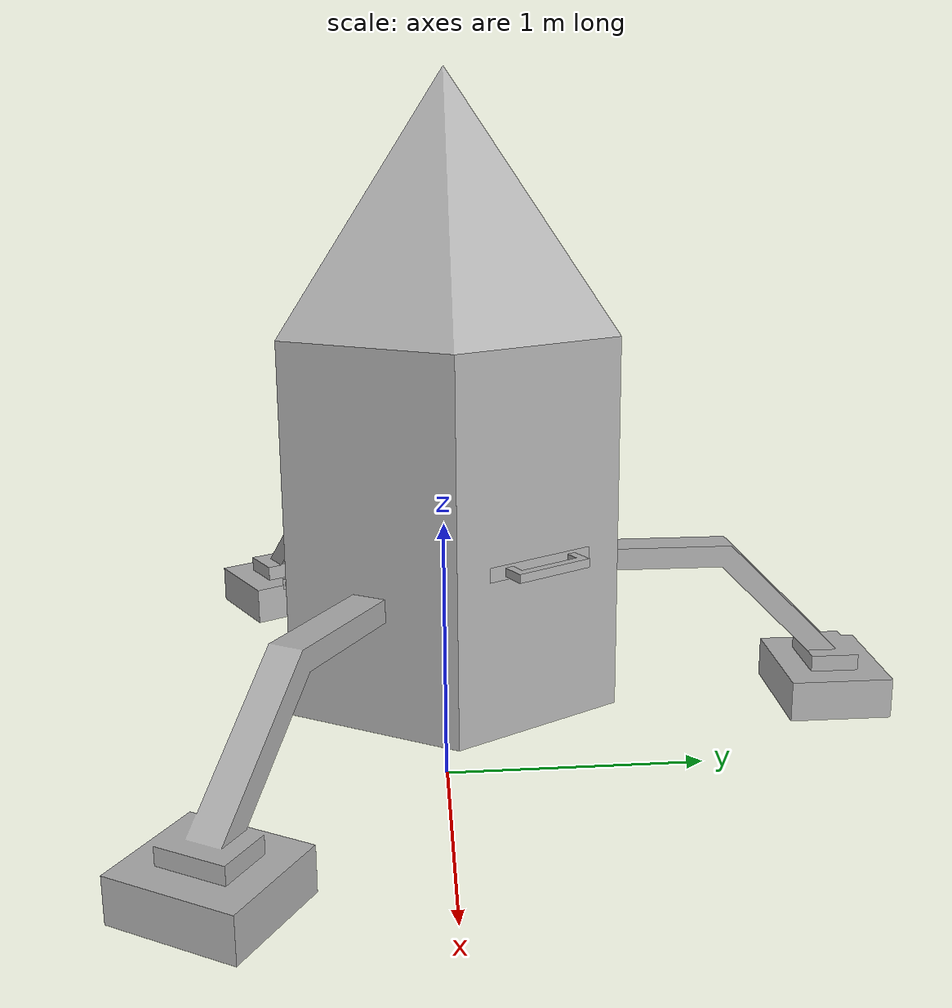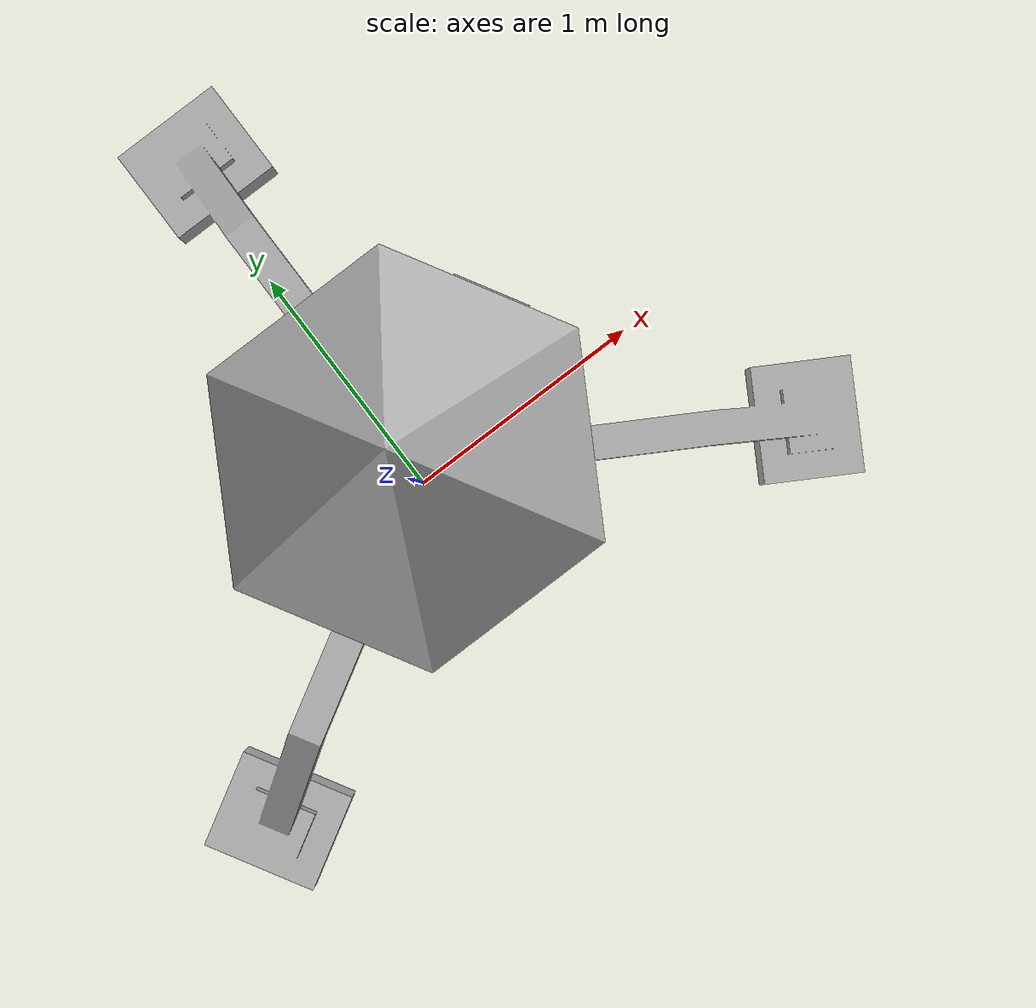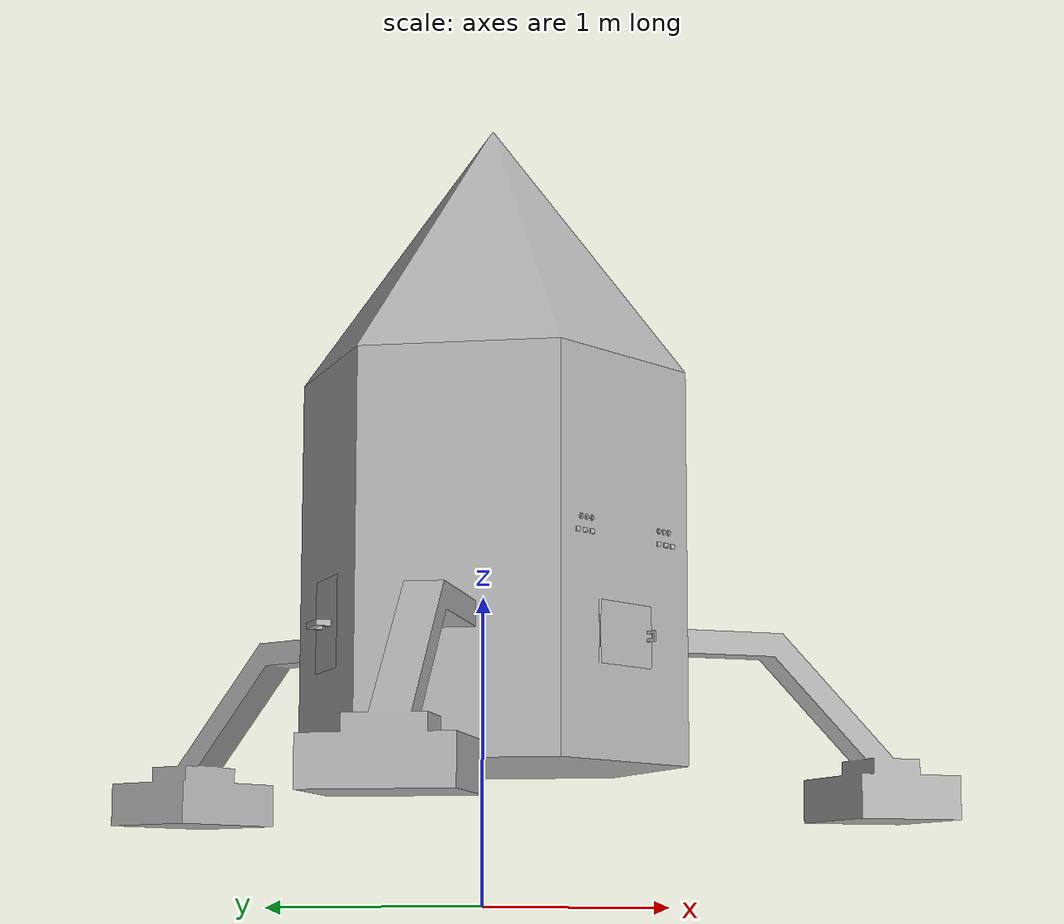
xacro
<?xml version="1.0" ?>
<robot name="panel_base"
  xmlns:xacro="http://www.ros.org/wiki/xacro">

  <xacro:include filename="$(find panel_base_description)/urdf/materials.xacro" />
  <xacro:include filename="$(find panel_base_description)/urdf/panel_base.trans" />
  <xacro:include filename="$(find panel_base_description)/urdf/panel_base.gazebo" />
  <link name="world">
  </link>
  <joint name="world_joint" type="fixed">
    <origin xyz="0 0 0.5" rpy="0 0 0" />
    <parent link="world" />
    <child link="base_link" />
  </joint>
  <link name="base_link">
    <inertial>
      <origin rpy="0 0 0" xyz="0.06511362426152816 0.015003868286298343 0.6005550723346115"/>
      <mass value="10863.544288992367"/>
      <inertia ixx="2524.540106" ixy="-10.92074" ixz="13.738953" iyy="2514.460837" iyz="-4.317618" izz="1913.520199"/>
    </inertial>
    <visual>
      <origin rpy="0 0 0" xyz="0 0 0"/>
      <geometry>
        <mesh filename="package://panel_base_description/meshes/base_link.stl" scale="0.001 0.001 0.001"/>
      </geometry>
      <material name="silver"/>
    </visual>
    <collision>
      <origin rpy="0 0 0" xyz="0 0 0"/>
      <geometry>
        <mesh filename="package://panel_base_description/meshes/base_link.stl" scale="0.001 0.001 0.001"/>
      </geometry>
    </collision>
  </link>

  <link name="LID_v2_1">
    <inertial>
      <origin rpy="0 0 0" xyz="-0.17558902614773753 0.10137662156005395 -0.009908204524496311"/>
      <mass value="4.56314999999999"/>
      <inertia ixx="0.998685" ixy="0.239189" ixz="0.001124" iyy="1.274877" iyz="-0.000649" izz="1.486785"/>
    </inertial>
    <visual>
      <origin rpy="0 0 0" xyz="0.08109 -0.099434 -0.394773"/>
      <geometry>
        <mesh filename="package://panel_base_description/meshes/LID_v2_1.stl" scale="0.001 0.001 0.001"/>
      </geometry>
      <material name="silver"/>
    </visual>
    <collision>
      <origin rpy="0 0 0" xyz="0.08109 -0.099434 -0.394773"/>
      <geometry>
        <mesh filename="package://panel_base_description/meshes/LID_v2_1.stl" scale="0.001 0.001 0.001"/>
      </geometry>
    </collision>
  </link>

  <link name="weight_v2_1">
    <inertial>
      <origin rpy="0 0 0" xyz="0.160811660533447 0.09284474955090975 -2.1640764535924006e-07"/>
      <mass value="5.0034699999999995"/>
      <inertia ixx="0.753377" ixy="0.025903" ixz="0.0" iyy="0.723467" iyz="0.0" izz="1.453545"/>
    </inertial>
    <visual>
      <origin rpy="0 0 0" xyz="-0.244391 -0.124434 -0.519773"/>
      <geometry>
        <mesh filename="package://panel_base_description/meshes/weight_v2_1.stl" scale="0.001 0.001 0.001"/>
      </geometry>
      <material name="silver"/>
    </visual>
    <collision>
      <origin rpy="0 0 0" xyz="-0.244391 -0.124434 -0.519773"/>
      <geometry>
        <mesh filename="package://panel_base_description/meshes/weight_v2_1.stl" scale="0.001 0.001 0.001"/>
      </geometry>
    </collision>
  </link>

  <link name="base_feet_v4_1">
    <inertial>
      <origin rpy="0 0 0" xyz="-2.7755575615628914e-17 0.7836949299813364 -0.3989426679019347"/>
      <mass value="292.07815114178516"/>
      <inertia ixx="28.619404" ixy="-0.0" ixz="0.0" iyy="14.485216" iyz="11.87614" izz="20.805874"/>
    </inertial>
    <visual>
      <origin rpy="0 0 0" xyz="-0.06 -0.550892 -0.384773"/>
      <geometry>
        <mesh filename="package://panel_base_description/meshes/base_feet_v4_1.stl" scale="0.001 0.001 0.001"/>
      </geometry>
      <material name="silver"/>
    </visual>
    <collision>
      <origin rpy="0 0 0" xyz="-0.06 -0.550892 -0.384773"/>
      <geometry>
        <mesh filename="package://panel_base_description/meshes/base_feet_v4_1.stl" scale="0.001 0.001 0.001"/>
      </geometry>
    </collision>
  </link>

  <link name="base_feet_v4__2__1">
    <inertial>
      <origin rpy="0 0 0" xyz="0.6786995983756393 -0.39184761414024416 -0.3989426679019343"/>
      <mass value="292.07815114178516"/>
      <inertia ixx="18.018763" ixy="6.120283" ixz="10.285039" iyy="25.085857" iyz="-5.93807" izz="20.805874"/>
    </inertial>
    <visual>
      <origin rpy="0 0 0" xyz="-0.521519 0.248482 -0.384773"/>
      <geometry>
        <mesh filename="package://panel_base_description/meshes/base_feet_v4__2__1.stl" scale="0.001 0.001 0.001"/>
      </geometry>
      <material name="silver"/>
    </visual>
    <collision>
      <origin rpy="0 0 0" xyz="-0.521519 0.248482 -0.384773"/>
      <geometry>
        <mesh filename="package://panel_base_description/meshes/base_feet_v4__2__1.stl" scale="0.001 0.001 0.001"/>
      </geometry>
    </collision>
  </link>

  <link name="base_feet_v4__1__1">
    <inertial>
      <origin rpy="0 0 0" xyz="-0.678699598375639 -0.3918476141402436 -0.3989426679019341"/>
      <mass value="292.07815114178516"/>
      <inertia ixx="18.018763" ixy="-6.120283" ixz="-10.285039" iyy="25.085857" iyz="-5.93807" izz="20.805874"/>
    </inertial>
    <visual>
      <origin rpy="0 0 0" xyz="0.401519 0.248482 -0.384773"/>
      <geometry>
        <mesh filename="package://panel_base_description/meshes/base_feet_v4__1__1.stl" scale="0.001 0.001 0.001"/>
      </geometry>
      <material name="silver"/>
    </visual>
    <collision>
      <origin rpy="0 0 0" xyz="0.401519 0.248482 -0.384773"/>
      <geometry>
        <mesh filename="package://panel_base_description/meshes/base_feet_v4__1__1.stl" scale="0.001 0.001 0.001"/>
      </geometry>
    </collision>
  </link>

  <link name="Hat_v3_1">
    <inertial>
      <origin rpy="0 0 0" xyz="-1.1102230246251565e-16 -9.943305112961043e-08 0.21650586623661727"/>
      <mass value="2487.4656674462667"/>
      <inertia ixx="201.329079" ixy="-0.0" ixz="-0.0" iyy="201.329079" iyz="-0.0" izz="262.738561"/>
    </inertial>
    <visual>
      <origin rpy="0 0 0" xyz="-0.06 -0.017976 -1.244773"/>
      <geometry>
        <mesh filename="package://panel_base_description/meshes/Hat_v3_1.stl" scale="0.001 0.001 0.001"/>
      </geometry>
      <material name="silver"/>
    </visual>
    <collision>
      <origin rpy="0 0 0" xyz="-0.06 -0.017976 -1.244773"/>
      <geometry>
        <mesh filename="package://panel_base_description/meshes/Hat_v3_1.stl" scale="0.001 0.001 0.001"/>
      </geometry>
    </collision>
  </link>

  <link name="keybord_v6_v1_1">
    <inertial>
      <origin rpy="0 0 0" xyz="0.0021202434618414617 -0.003086383812323068 0.0018304670746733254"/>
      <mass value="0.31311468306567314"/>
      <inertia ixx="0.000137" ixy="-1e-06" ixz="-6e-06" iyy="0.001192" iyz="-1e-06" izz="0.001059"/>
    </inertial>
    <visual>
      <origin rpy="0 0 0" xyz="-0.06 0.444941 -0.344773"/>
      <geometry>
        <mesh filename="package://panel_base_description/meshes/keybord_v6_v1_1.stl" scale="0.001 0.001 0.001"/>
      </geometry>
      <material name="silver"/>
    </visual>
    <collision>
      <origin rpy="0 0 0" xyz="-0.06 0.444941 -0.344773"/>
      <geometry>
        <mesh filename="package://panel_base_description/meshes/keybord_v6_v1_1.stl" scale="0.001 0.001 0.001"/>
      </geometry>
    </collision>
  </link>

  <link name="Kapak_1_v15_1">
    <inertial>
      <origin rpy="0 0 0" xyz="0.13471878292451106 0.007189274164557391 -0.049967347917310556"/>
      <mass value="4.191774356931193"/>
      <inertia ixx="0.013824" ixy="0.000117" ixz="-1.5e-05" iyy="0.038379" iyz="3e-06" izz="0.024685"/>
    </inertial>
    <visual>
      <origin rpy="0 0 0" xyz="0.075 0.547441 -0.394773"/>
      <geometry>
        <mesh filename="package://panel_base_description/meshes/Kapak_1_v15_1.stl" scale="0.001 0.001 0.001"/>
      </geometry>
      <material name="silver"/>
    </visual>
    <collision>
      <origin rpy="0 0 0" xyz="0.075 0.547441 -0.394773"/>
      <geometry>
        <mesh filename="package://panel_base_description/meshes/Kapak_1_v15_1.stl" scale="0.001 0.001 0.001"/>
      </geometry>
    </collision>
  </link>

  <link name="Power_Switch_v1__4__1">
    <inertial>
      <origin rpy="0 0 0" xyz="0.0002966131809387096 -0.006958102859998427 -4.471703652364489e-06"/>
      <mass value="0.024410578629013545"/>
      <inertia ixx="1e-06" ixy="0.0" ixz="-0.0" iyy="1e-06" iyz="0.0" izz="1e-06"/>
    </inertial>
    <visual>
      <origin rpy="0 0 0" xyz="0.183937 0.534941 -0.652587"/>
      <geometry>
        <mesh filename="package://panel_base_description/meshes/Power_Switch_v1__4__1.stl" scale="0.001 0.001 0.001"/>
      </geometry>
      <material name="silver"/>
    </visual>
    <collision>
      <origin rpy="0 0 0" xyz="0.183937 0.534941 -0.652587"/>
      <geometry>
        <mesh filename="package://panel_base_description/meshes/Power_Switch_v1__4__1.stl" scale="0.001 0.001 0.001"/>
      </geometry>
    </collision>
  </link>

  <link name="Power_Switch_v1__1__1">
    <inertial>
      <origin rpy="0 0 0" xyz="0.0002969418682636227 -0.006958102859998427 -4.471703652697556e-06"/>
      <mass value="0.024410578629013545"/>
      <inertia ixx="1e-06" ixy="0.0" ixz="-0.0" iyy="1e-06" iyz="0.0" izz="1e-06"/>
    </inertial>
    <visual>
      <origin rpy="0 0 0" xyz="0.1476 0.534941 -0.652587"/>
      <geometry>
        <mesh filename="package://panel_base_description/meshes/Power_Switch_v1__1__1.stl" scale="0.001 0.001 0.001"/>
      </geometry>
      <material name="silver"/>
    </visual>
    <collision>
      <origin rpy="0 0 0" xyz="0.1476 0.534941 -0.652587"/>
      <geometry>
        <mesh filename="package://panel_base_description/meshes/Power_Switch_v1__1__1.stl" scale="0.001 0.001 0.001"/>
      </geometry>
    </collision>
  </link>

  <link name="Power_Switch_v1_1">
    <inertial>
      <origin rpy="0 0 0" xyz="0.0002969418682635949 -0.006958102859997983 -4.471703652697556e-06"/>
      <mass value="0.024410578629013545"/>
      <inertia ixx="1e-06" ixy="0.0" ixz="-0.0" iyy="1e-06" iyz="0.0" izz="1e-06"/>
    </inertial>
    <visual>
      <origin rpy="0 0 0" xyz="0.111313 0.534941 -0.652637"/>
      <geometry>
        <mesh filename="package://panel_base_description/meshes/Power_Switch_v1_1.stl" scale="0.001 0.001 0.001"/>
      </geometry>
      <material name="silver"/>
    </visual>
    <collision>
      <origin rpy="0 0 0" xyz="0.111313 0.534941 -0.652637"/>
      <geometry>
        <mesh filename="package://panel_base_description/meshes/Power_Switch_v1_1.stl" scale="0.001 0.001 0.001"/>
      </geometry>
    </collision>
  </link>

  <link name="Power_Switch_v1__2__1">
    <inertial>
      <origin rpy="0 0 0" xyz="0.00029694186826295654 -0.006958102859997539 -4.471703652697556e-06"/>
      <mass value="0.024410578629013545"/>
      <inertia ixx="1e-06" ixy="0.0" ixz="-0.0" iyy="1e-06" iyz="0.0" izz="1e-06"/>
    </inertial>
    <visual>
      <origin rpy="0 0 0" xyz="-0.231313 0.534941 -0.652637"/>
      <geometry>
        <mesh filename="package://panel_base_description/meshes/Power_Switch_v1__2__1.stl" scale="0.001 0.001 0.001"/>
      </geometry>
      <material name="silver"/>
    </visual>
    <collision>
      <origin rpy="0 0 0" xyz="-0.231313 0.534941 -0.652637"/>
      <geometry>
        <mesh filename="package://panel_base_description/meshes/Power_Switch_v1__2__1.stl" scale="0.001 0.001 0.001"/>
      </geometry>
    </collision>
  </link>

  <link name="Power_Switch_v1__3__1">
    <inertial>
      <origin rpy="0 0 0" xyz="0.00029694186826295654 -0.006958102859998427 -4.471703652586534e-06"/>
      <mass value="0.024410578629013545"/>
      <inertia ixx="1e-06" ixy="0.0" ixz="-0.0" iyy="1e-06" iyz="0.0" izz="1e-06"/>
    </inertial>
    <visual>
      <origin rpy="0 0 0" xyz="-0.2676 0.534941 -0.652587"/>
      <geometry>
        <mesh filename="package://panel_base_description/meshes/Power_Switch_v1__3__1.stl" scale="0.001 0.001 0.001"/>
      </geometry>
      <material name="silver"/>
    </visual>
    <collision>
      <origin rpy="0 0 0" xyz="-0.2676 0.534941 -0.652587"/>
      <geometry>
        <mesh filename="package://panel_base_description/meshes/Power_Switch_v1__3__1.stl" scale="0.001 0.001 0.001"/>
      </geometry>
    </collision>
  </link>

  <link name="Power_Switch_v1__5__1">
    <inertial>
      <origin rpy="0 0 0" xyz="0.0002972705555878141 -0.006958102859998427 -4.471703652586534e-06"/>
      <mass value="0.024410578629013545"/>
      <inertia ixx="1e-06" ixy="0.0" ixz="-0.0" iyy="1e-06" iyz="0.0" izz="1e-06"/>
    </inertial>
    <visual>
      <origin rpy="0 0 0" xyz="-0.303937 0.534941 -0.652587"/>
      <geometry>
        <mesh filename="package://panel_base_description/meshes/Power_Switch_v1__5__1.stl" scale="0.001 0.001 0.001"/>
      </geometry>
      <material name="silver"/>
    </visual>
    <collision>
      <origin rpy="0 0 0" xyz="-0.303937 0.534941 -0.652587"/>
      <geometry>
        <mesh filename="package://panel_base_description/meshes/Power_Switch_v1__5__1.stl" scale="0.001 0.001 0.001"/>
      </geometry>
    </collision>
  </link>

  <link name="Push_Button_Miyama_DS_412_ROT_v1__4__1">
    <inertial>
      <origin rpy="0 0 0" xyz="2.563228293100961e-05 -0.009416553271510475 -3.0324005425685918e-05"/>
      <mass value="0.0036732888359473866"/>
      <inertia ixx="0.0" ixy="0.0" ixz="-0.0" iyy="0.0" iyz="-0.0" izz="0.0"/>
    </inertial>
    <visual>
      <origin rpy="0 0 0" xyz="0.165768 0.529941 -0.694773"/>
      <geometry>
        <mesh filename="package://panel_base_description/meshes/Push_Button_Miyama_DS_412_ROT_v1__4__1.stl" scale="0.001 0.001 0.001"/>
      </geometry>
      <material name="silver"/>
    </visual>
    <collision>
      <origin rpy="0 0 0" xyz="0.165768 0.529941 -0.694773"/>
      <geometry>
        <mesh filename="package://panel_base_description/meshes/Push_Button_Miyama_DS_412_ROT_v1__4__1.stl" scale="0.001 0.001 0.001"/>
      </geometry>
    </collision>
  </link>

  <link name="Push_Button_Miyama_DS_412_ROT_v1__3__1">
    <inertial>
      <origin rpy="0 0 0" xyz="2.5632282931148387e-05 -0.009416553271510475 -3.0324005425019784e-05"/>
      <mass value="0.0036732888359473866"/>
      <inertia ixx="0.0" ixy="0.0" ixz="-0.0" iyy="0.0" iyz="-0.0" izz="0.0"/>
    </inertial>
    <visual>
      <origin rpy="0 0 0" xyz="0.138818 0.529941 -0.694773"/>
      <geometry>
        <mesh filename="package://panel_base_description/meshes/Push_Button_Miyama_DS_412_ROT_v1__3__1.stl" scale="0.001 0.001 0.001"/>
      </geometry>
      <material name="silver"/>
    </visual>
    <collision>
      <origin rpy="0 0 0" xyz="0.138818 0.529941 -0.694773"/>
      <geometry>
        <mesh filename="package://panel_base_description/meshes/Push_Button_Miyama_DS_412_ROT_v1__3__1.stl" scale="0.001 0.001 0.001"/>
      </geometry>
    </collision>
  </link>

  <link name="Push_Button_Miyama_DS_412_ROT_v1_1">
    <inertial>
      <origin rpy="0 0 0" xyz="2.563228293094022e-05 -0.009416553271510475 -3.0324005425019784e-05"/>
      <mass value="0.0036732888359473866"/>
      <inertia ixx="0.0" ixy="0.0" ixz="-0.0" iyy="0.0" iyz="-0.0" izz="0.0"/>
    </inertial>
    <visual>
      <origin rpy="0 0 0" xyz="0.111868 0.529941 -0.694773"/>
      <geometry>
        <mesh filename="package://panel_base_description/meshes/Push_Button_Miyama_DS_412_ROT_v1_1.stl" scale="0.001 0.001 0.001"/>
      </geometry>
      <material name="silver"/>
    </visual>
    <collision>
      <origin rpy="0 0 0" xyz="0.111868 0.529941 -0.694773"/>
      <geometry>
        <mesh filename="package://panel_base_description/meshes/Push_Button_Miyama_DS_412_ROT_v1_1.stl" scale="0.001 0.001 0.001"/>
      </geometry>
    </collision>
  </link>

  <link name="Push_Button_Miyama_DS_412_ROT_v1__5__1">
    <inertial>
      <origin rpy="0 0 0" xyz="2.6316054443531467e-05 -0.009416553271510475 -3.0324005425907963e-05"/>
      <mass value="0.0036732888359473866"/>
      <inertia ixx="0.0" ixy="0.0" ixz="-0.0" iyy="0.0" iyz="-0.0" izz="0.0"/>
    </inertial>
    <visual>
      <origin rpy="0 0 0" xyz="-0.231868 0.529941 -0.694773"/>
      <geometry>
        <mesh filename="package://panel_base_description/meshes/Push_Button_Miyama_DS_412_ROT_v1__5__1.stl" scale="0.001 0.001 0.001"/>
      </geometry>
      <material name="silver"/>
    </visual>
    <collision>
      <origin rpy="0 0 0" xyz="-0.231868 0.529941 -0.694773"/>
      <geometry>
        <mesh filename="package://panel_base_description/meshes/Push_Button_Miyama_DS_412_ROT_v1__5__1.stl" scale="0.001 0.001 0.001"/>
      </geometry>
    </collision>
  </link>

  <link name="Push_Button_Miyama_DS_412_ROT_v1__2__1">
    <inertial>
      <origin rpy="0 0 0" xyz="2.631605444364249e-05 -0.009416553271510475 -3.0324005425019784e-05"/>
      <mass value="0.0036732888359473866"/>
      <inertia ixx="0.0" ixy="0.0" ixz="-0.0" iyy="0.0" iyz="-0.0" izz="0.0"/>
    </inertial>
    <visual>
      <origin rpy="0 0 0" xyz="-0.258818 0.529941 -0.694773"/>
      <geometry>
        <mesh filename="package://panel_base_description/meshes/Push_Button_Miyama_DS_412_ROT_v1__2__1.stl" scale="0.001 0.001 0.001"/>
      </geometry>
      <material name="silver"/>
    </visual>
    <collision>
      <origin rpy="0 0 0" xyz="-0.258818 0.529941 -0.694773"/>
      <geometry>
        <mesh filename="package://panel_base_description/meshes/Push_Button_Miyama_DS_412_ROT_v1__2__1.stl" scale="0.001 0.001 0.001"/>
      </geometry>
    </collision>
  </link>

  <link name="Push_Button_Miyama_DS_412_ROT_v1__1__1">
    <inertial>
      <origin rpy="0 0 0" xyz="2.6316054443864534e-05 -0.009416553271510475 -3.032400542535285e-05"/>
      <mass value="0.0036732888359473866"/>
      <inertia ixx="0.0" ixy="0.0" ixz="-0.0" iyy="0.0" iyz="-0.0" izz="0.0"/>
    </inertial>
    <visual>
      <origin rpy="0 0 0" xyz="-0.285768 0.529941 -0.694773"/>
      <geometry>
        <mesh filename="package://panel_base_description/meshes/Push_Button_Miyama_DS_412_ROT_v1__1__1.stl" scale="0.001 0.001 0.001"/>
      </geometry>
      <material name="silver"/>
    </visual>
    <collision>
      <origin rpy="0 0 0" xyz="-0.285768 0.529941 -0.694773"/>
      <geometry>
        <mesh filename="package://panel_base_description/meshes/Push_Button_Miyama_DS_412_ROT_v1__1__1.stl" scale="0.001 0.001 0.001"/>
      </geometry>
    </collision>
  </link>

  <joint name="Slider26" type="prismatic">
    <origin rpy="0 0 0" xyz="-0.08109 0.099434 0.394773"/>
    <parent link="base_link"/>
    <child link="LID_v2_1"/>
    <axis xyz="-0.866025 0.5 0.0"/>
    <limit effort="1000" lower="0.0" upper="100.0" velocity="100"/>
  </joint>

  <joint name="Slider27" type="prismatic">
    <origin rpy="0 0 0" xyz="0.244391 0.124434 0.519773"/>
    <parent link="base_link"/>
    <child link="weight_v2_1"/>
    <axis xyz="0.866025 0.5 0.0"/>
    <limit effort="1000" lower="0.0" upper="100.0" velocity="100"/>
  </joint>

  <joint name="Rigid28" type="fixed">
    <origin rpy="0 0 0" xyz="0.06 0.550892 0.384773"/>
    <parent link="base_link"/>
    <child link="base_feet_v4_1"/>
  </joint>

  <joint name="Rigid29" type="fixed">
    <origin rpy="0 0 0" xyz="0.521519 -0.248482 0.384773"/>
    <parent link="base_link"/>
    <child link="base_feet_v4__2__1"/>
  </joint>

  <joint name="Rigid30" type="fixed">
    <origin rpy="0 0 0" xyz="-0.401519 -0.248482 0.384773"/>
    <parent link="base_link"/>
    <child link="base_feet_v4__1__1"/>
  </joint>

  <joint name="Rigid31" type="fixed">
    <origin rpy="0 0 0" xyz="0.06 0.017976 1.244773"/>
    <parent link="base_link"/>
    <child link="Hat_v3_1"/>
  </joint>

  <joint name="Rigid32" type="fixed">
    <origin rpy="0 0 0" xyz="0.06 -0.444941 0.344773"/>
    <parent link="base_link"/>
    <child link="keybord_v6_v1_1"/>
  </joint>

  <joint name="Rev33" type="revolute">
    <origin rpy="0 0 0" xyz="-0.075 -0.547441 0.394773"/>
    <parent link="base_link"/>
    <child link="Kapak_1_v15_1"/>
    <axis xyz="0.0 0.0 -1.0"/>
    <limit effort="1000" lower="0.0" upper="1.570796" velocity="100"/>
  </joint>

  <joint name="Rigid34" type="fixed">
    <origin rpy="0 0 0" xyz="-0.183937 -0.534941 0.652587"/>
    <parent link="base_link"/>
    <child link="Power_Switch_v1__4__1"/>
  </joint>

  <joint name="Rigid35" type="fixed">
    <origin rpy="0 0 0" xyz="-0.1476 -0.534941 0.652587"/>
    <parent link="base_link"/>
    <child link="Power_Switch_v1__1__1"/>
  </joint>

  <joint name="Rigid36" type="fixed">
    <origin rpy="0 0 0" xyz="-0.111313 -0.534941 0.652637"/>
    <parent link="base_link"/>
    <child link="Power_Switch_v1_1"/>
  </joint>

  <joint name="Rigid37" type="fixed">
    <origin rpy="0 0 0" xyz="0.231313 -0.534941 0.652637"/>
    <parent link="base_link"/>
    <child link="Power_Switch_v1__2__1"/>
  </joint>

  <joint name="Rigid38" type="fixed">
    <origin rpy="0 0 0" xyz="0.2676 -0.534941 0.652587"/>
    <parent link="base_link"/>
    <child link="Power_Switch_v1__3__1"/>
  </joint>

  <joint name="Rigid39" type="fixed">
    <origin rpy="0 0 0" xyz="0.303937 -0.534941 0.652587"/>
    <parent link="base_link"/>
    <child link="Power_Switch_v1__5__1"/>
  </joint>

  <joint name="Rigid40" type="fixed">
    <origin rpy="0 0 0" xyz="-0.165768 -0.529941 0.694773"/>
    <parent link="base_link"/>
    <child link="Push_Button_Miyama_DS_412_ROT_v1__4__1"/>
  </joint>

  <joint name="Rigid41" type="fixed">
    <origin rpy="0 0 0" xyz="-0.138818 -0.529941 0.694773"/>
    <parent link="base_link"/>
    <child link="Push_Button_Miyama_DS_412_ROT_v1__3__1"/>
  </joint>

  <joint name="Rigid42" type="fixed">
    <origin rpy="0 0 0" xyz="-0.111868 -0.529941 0.694773"/>
    <parent link="base_link"/>
    <child link="Push_Button_Miyama_DS_412_ROT_v1_1"/>
  </joint>

  <joint name="Rigid43" type="fixed">
    <origin rpy="0 0 0" xyz="0.231868 -0.529941 0.694773"/>
    <parent link="base_link"/>
    <child link="Push_Button_Miyama_DS_412_ROT_v1__5__1"/>
  </joint>

  <joint name="Rigid44" type="fixed">
    <origin rpy="0 0 0" xyz="0.258818 -0.529941 0.694773"/>
    <parent link="base_link"/>
    <child link="Push_Button_Miyama_DS_412_ROT_v1__2__1"/>
  </joint>

  <joint name="Rigid45" type="fixed">
    <origin rpy="0 0 0" xyz="0.285768 -0.529941 0.694773"/>
    <parent link="base_link"/>
    <child link="Push_Button_Miyama_DS_412_ROT_v1__1__1"/>
  </joint>

</robot>

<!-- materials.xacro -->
<robot name="panel_base"
  xmlns:xacro="http://www.ros.org/wiki/xacro">

  <material name="silver">
    <color rgba="0.700 0.700 0.700 1.000"/>
  </material>

</robot>

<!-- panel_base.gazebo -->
<robot name="panel_base"
  xmlns:xacro="http://www.ros.org/wiki/xacro">

  <xacro:property name="body_color" value="Gazebo/Silver" />

  <gazebo>
    <plugin filename="libgazebo_ros_control.so" name="control"/>
  </gazebo>
  <gazebo reference="base_link">
    <material>${body_color}</material>
    <mu1>0.2</mu1>
    <mu2>0.2</mu2>
    <selfCollide>true</selfCollide>
    <gravity>true</gravity>
  </gazebo>

  <gazebo reference="LID_v2_1">
    <material>${body_color}</material>
    <mu1>0.2</mu1>
    <mu2>0.2</mu2>
    <selfCollide>true</selfCollide>
  </gazebo>

  <gazebo reference="weight_v2_1">
    <material>${body_color}</material>
    <mu1>0.2</mu1>
    <mu2>0.2</mu2>
    <selfCollide>true</selfCollide>
  </gazebo>

  <gazebo reference="base_feet_v4_1">
    <material>${body_color}</material>
    <mu1>0.2</mu1>
    <mu2>0.2</mu2>
    <selfCollide>true</selfCollide>
  </gazebo>

  <gazebo reference="base_feet_v4__2__1">
    <material>${body_color}</material>
    <mu1>0.2</mu1>
    <mu2>0.2</mu2>
    <selfCollide>true</selfCollide>
  </gazebo>

  <gazebo reference="base_feet_v4__1__1">
    <material>${body_color}</material>
    <mu1>0.2</mu1>
    <mu2>0.2</mu2>
    <selfCollide>true</selfCollide>
  </gazebo>

  <gazebo reference="Hat_v3_1">
    <material>${body_color}</material>
    <mu1>0.2</mu1>
    <mu2>0.2</mu2>
    <selfCollide>true</selfCollide>
  </gazebo>

  <gazebo reference="keybord_v6_v1_1">
    <material>${body_color}</material>
    <mu1>0.2</mu1>
    <mu2>0.2</mu2>
    <selfCollide>true</selfCollide>
  </gazebo>

  <gazebo reference="Kapak_1_v15_1">
    <material>${body_color}</material>
    <mu1>0.2</mu1>
    <mu2>0.2</mu2>
    <selfCollide>true</selfCollide>
  </gazebo>

  <gazebo reference="Power_Switch_v1__4__1">
    <material>${body_color}</material>
    <mu1>0.2</mu1>
    <mu2>0.2</mu2>
    <selfCollide>true</selfCollide>
  </gazebo>

  <gazebo reference="Power_Switch_v1__1__1">
    <material>${body_color}</material>
    <mu1>0.2</mu1>
    <mu2>0.2</mu2>
    <selfCollide>true</selfCollide>
  </gazebo>

  <gazebo reference="Power_Switch_v1_1">
    <material>${body_color}</material>
    <mu1>0.2</mu1>
    <mu2>0.2</mu2>
    <selfCollide>true</selfCollide>
  </gazebo>

  <gazebo reference="Power_Switch_v1__2__1">
    <material>${body_color}</material>
    <mu1>0.2</mu1>
    <mu2>0.2</mu2>
    <selfCollide>true</selfCollide>
  </gazebo>

  <gazebo reference="Power_Switch_v1__3__1">
    <material>${body_color}</material>
    <mu1>0.2</mu1>
    <mu2>0.2</mu2>
    <selfCollide>true</selfCollide>
  </gazebo>

  <gazebo reference="Power_Switch_v1__5__1">
    <material>${body_color}</material>
    <mu1>0.2</mu1>
    <mu2>0.2</mu2>
    <selfCollide>true</selfCollide>
  </gazebo>

  <gazebo reference="Push_Button_Miyama_DS_412_ROT_v1__4__1">
    <material>${body_color}</material>
    <mu1>0.2</mu1>
    <mu2>0.2</mu2>
    <selfCollide>true</selfCollide>
  </gazebo>

  <gazebo reference="Push_Button_Miyama_DS_412_ROT_v1__3__1">
    <material>${body_color}</material>
    <mu1>0.2</mu1>
    <mu2>0.2</mu2>
    <selfCollide>true</selfCollide>
  </gazebo>

  <gazebo reference="Push_Button_Miyama_DS_412_ROT_v1_1">
    <material>${body_color}</material>
    <mu1>0.2</mu1>
    <mu2>0.2</mu2>
    <selfCollide>true</selfCollide>
  </gazebo>

  <gazebo reference="Push_Button_Miyama_DS_412_ROT_v1__5__1">
    <material>${body_color}</material>
    <mu1>0.2</mu1>
    <mu2>0.2</mu2>
    <selfCollide>true</selfCollide>
  </gazebo>

  <gazebo reference="Push_Button_Miyama_DS_412_ROT_v1__2__1">
    <material>${body_color}</material>
    <mu1>0.2</mu1>
    <mu2>0.2</mu2>
    <selfCollide>true</selfCollide>
  </gazebo>

  <gazebo reference="Push_Button_Miyama_DS_412_ROT_v1__1__1">
    <material>${body_color}</material>
    <mu1>0.2</mu1>
    <mu2>0.2</mu2>
    <selfCollide>true</selfCollide>
  </gazebo>

  <!-- Coloring for panel links -->
  <gazebo reference="base_link">
    <material>Gazebo/Grey</material>
  </gazebo>
  <gazebo reference="Hat_v3_1">
    <material>Gazebo/Red</material>
  </gazebo>
  <gazebo reference="LID_v2_1">
    <material>Gazebo/Blue</material>
  </gazebo>
  <gazebo reference="weight_v2_1">
    <material>Gazebo/Turquoise</material>
  </gazebo>
  <gazebo reference="Kapak_1_v15_1">
    <material>Gazebo/Gold</material>
  </gazebo>
  <gazebo reference="base_feet_v4_1">
    <material>Gazebo/Yellow</material>
  </gazebo>
  <gazebo reference="base_feet_v4__2__1">
    <material>Gazebo/Yellow</material>
  </gazebo>
  <gazebo reference="base_feet_v4__1__1">
    <material>Gazebo/Yellow</material>
  </gazebo>
  </robot>
